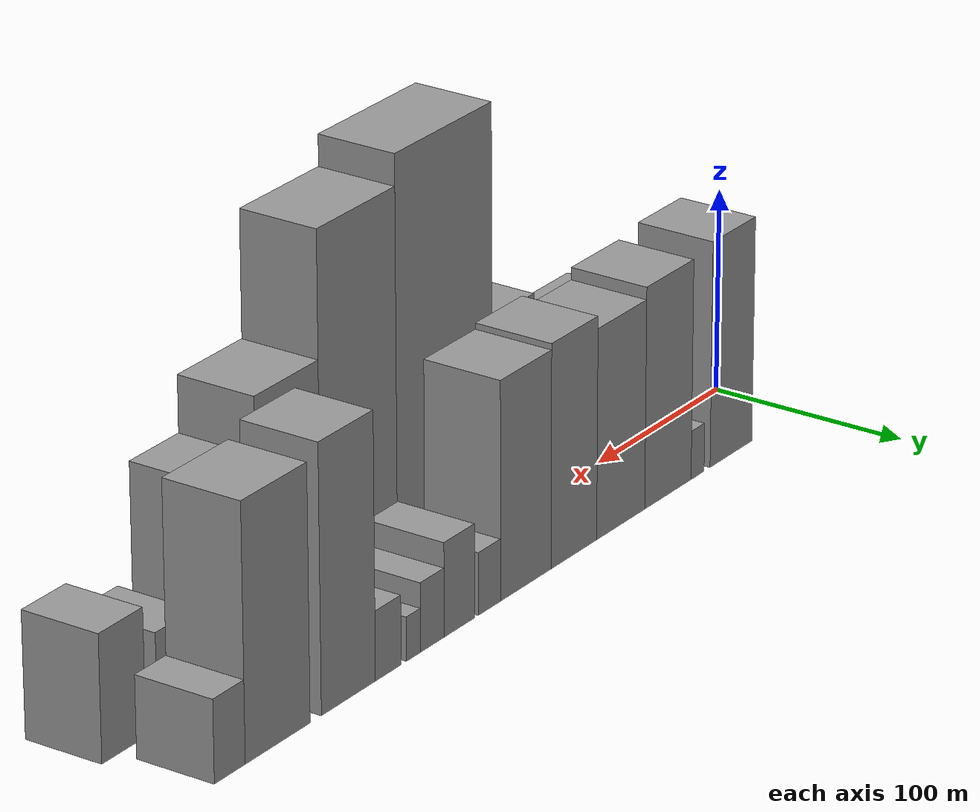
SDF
<sdf version="1.6">
 <world name="default">
  <scene>
   <sky><clouds><speed>12</speed></clouds></sky>
   <ambient>0.4 0.4 0.4 1</ambient>
   <background>0.7 0.7 0.7 1</background>
   <shadows>1</shadows>
  </scene>
  <gravity>0 0 -9.8066</gravity>
  <magnetic_field>6e-06 2.3e-05 -4.2e-05</magnetic_field>
  <physics default="0" name="default_physics" type="ode">
   <ode>
    <solver>
     <type>quick</type>
     <iters>10</iters>
     <sor>1.0</sor>
     <use_dynamic_moi_rescaling>0</use_dynamic_moi_rescaling>
    </solver>
    <constraints>
     <cfm>0</cfm>
     <erp>0.2</erp>
     <contact_max_correcting_vel>100</contact_max_correcting_vel>
     <contact_surface_layer>0.001</contact_surface_layer>
    </constraints>
   </ode>
   <max_step_size>0.004</max_step_size>
   <real_time_factor>1</real_time_factor>
   <real_time_update_rate>250</real_time_update_rate>
  </physics>
  <light name="sun" type="directional">
   <pose>0 0 10 0 0 0</pose>
   <diffuse>0.8 0.8 0.8 1</diffuse>
   <specular>0.2 0.2 0.2 1</specular>
   <attenuation>
    <range>1000</range>
    <constant>0.9</constant>
    <linear>0.01</linear>
    <quadratic>0.001</quadratic>
   </attenuation>
   <direction>-0.5 0.1 -0.9</direction>
  </light>
  <model name="building_1">
   <static>1</static>
   <pose>57.7230 24.5000 0 0.000000 0.000000 1.570796</pose>
   <link name="link">
    <pose>0 0 55.50 0 0 0</pose>
    <collision name="collision"><geometry><box><size>40.0000 35.4460 111.0000</size></box></geometry></collision>
    <visual name="visual">
     <cast_shadows>0</cast_shadows>
     <geometry><box><size>40.0000 35.4460 111.0000</size></box></geometry>
     <material>
      <script>
       <uri>model://grey_wall/materials/scripts</uri>
       <uri>model://grey_wall/materials/textures</uri>
       <name>vrc/grey_wall</name>
      </script>
     </material>
    </visual>
   </link>
  </model>
  <model name="building_2">
   <static>1</static>
   <pose>85.8500 24.5000 0 0.000000 0.000000 1.570796</pose>
   <link name="link">
    <pose>0 0 12.00 0 0 0</pose>
    <collision name="collision"><geometry><box><size>40.0000 10.8080 24.0000</size></box></geometry></collision>
    <visual name="visual">
     <cast_shadows>0</cast_shadows>
     <geometry><box><size>40.0000 10.8080 24.0000</size></box></geometry>
     <material>
      <script>
       <uri>model://grey_wall/materials/scripts</uri>
       <uri>model://grey_wall/materials/textures</uri>
       <name>vrc/grey_wall</name>
      </script>
     </material>
    </visual>
   </link>
  </model>
  <model name="building_3">
   <static>1</static>
   <pose>110.3796 24.5000 0 0.000000 0.000000 1.570796</pose>
   <link name="link">
    <pose>0 0 54.00 0 0 0</pose>
    <collision name="collision"><geometry><box><size>40.0000 38.2512 108.0000</size></box></geometry></collision>
    <visual name="visual">
     <cast_shadows>0</cast_shadows>
     <geometry><box><size>40.0000 38.2512 108.0000</size></box></geometry>
     <material>
      <script>
       <uri>model://grey_wall/materials/scripts</uri>
       <uri>model://grey_wall/materials/textures</uri>
       <name>vrc/grey_wall</name>
      </script>
     </material>
    </visual>
   </link>
  </model>
  <model name="building_4">
   <static>1</static>
   <pose>148.9322 24.5000 0 0.000000 0.000000 1.570796</pose>
   <link name="link">
    <pose>0 0 51.00 0 0 0</pose>
    <collision name="collision"><geometry><box><size>40.0000 38.8541 102.0000</size></box></geometry></collision>
    <visual name="visual">
     <cast_shadows>0</cast_shadows>
     <geometry><box><size>40.0000 38.8541 102.0000</size></box></geometry>
     <material>
      <script>
       <uri>model://grey_wall/materials/scripts</uri>
       <uri>model://grey_wall/materials/textures</uri>
       <name>vrc/grey_wall</name>
      </script>
     </material>
    </visual>
   </link>
  </model>
  <model name="building_5">
   <static>1</static>
   <pose>186.4778 24.5000 0 0.000000 0.000000 1.570796</pose>
   <link name="link">
    <pose>0 0 54.00 0 0 0</pose>
    <collision name="collision"><geometry><box><size>40.0000 36.2371 108.0000</size></box></geometry></collision>
    <visual name="visual">
     <cast_shadows>0</cast_shadows>
     <geometry><box><size>40.0000 36.2371 108.0000</size></box></geometry>
     <material>
      <script>
       <uri>model://grey_wall/materials/scripts</uri>
       <uri>model://grey_wall/materials/textures</uri>
       <name>vrc/grey_wall</name>
      </script>
     </material>
    </visual>
   </link>
  </model>
  <model name="building_6">
   <static>1</static>
   <pose>224.2508 24.5000 0 0.000000 0.000000 1.570796</pose>
   <link name="link">
    <pose>0 0 52.50 0 0 0</pose>
    <collision name="collision"><geometry><box><size>40.0000 39.3089 105.0000</size></box></geometry></collision>
    <visual name="visual">
     <cast_shadows>0</cast_shadows>
     <geometry><box><size>40.0000 39.3089 105.0000</size></box></geometry>
     <material>
      <script>
       <uri>model://grey_wall/materials/scripts</uri>
       <uri>model://grey_wall/materials/textures</uri>
       <name>vrc/grey_wall</name>
      </script>
     </material>
    </visual>
   </link>
  </model>
  <model name="building_7">
   <static>1</static>
   <pose>252.2748 24.5000 0 0.000000 0.000000 1.570796</pose>
   <link name="link">
    <pose>0 0 15.00 0 0 0</pose>
    <collision name="collision"><geometry><box><size>40.0000 16.7392 30.0000</size></box></geometry></collision>
    <visual name="visual">
     <cast_shadows>0</cast_shadows>
     <geometry><box><size>40.0000 16.7392 30.0000</size></box></geometry>
     <material>
      <script>
       <uri>model://grey_wall/materials/scripts</uri>
       <uri>model://grey_wall/materials/textures</uri>
       <name>vrc/grey_wall</name>
      </script>
     </material>
    </visual>
   </link>
  </model>
  <model name="building_8">
   <static>1</static>
   <pose>275.1483 24.5000 0 0.000000 0.000000 1.570796</pose>
   <link name="link">
    <pose>0 0 22.50 0 0 0</pose>
    <collision name="collision"><geometry><box><size>40.0000 23.0078 45.0000</size></box></geometry></collision>
    <visual name="visual">
     <cast_shadows>0</cast_shadows>
     <geometry><box><size>40.0000 23.0078 45.0000</size></box></geometry>
     <material>
      <script>
       <uri>model://grey_wall/materials/scripts</uri>
       <uri>model://grey_wall/materials/textures</uri>
       <name>vrc/grey_wall</name>
      </script>
     </material>
    </visual>
   </link>
  </model>
  <model name="building_9">
   <static>1</static>
   <pose>295.5090 24.5000 0 0.000000 0.000000 1.570796</pose>
   <link name="link">
    <pose>0 0 16.50 0 0 0</pose>
    <collision name="collision"><geometry><box><size>40.0000 17.7137 33.0000</size></box></geometry></collision>
    <visual name="visual">
     <cast_shadows>0</cast_shadows>
     <geometry><box><size>40.0000 17.7137 33.0000</size></box></geometry>
     <material>
      <script>
       <uri>model://grey_wall/materials/scripts</uri>
       <uri>model://grey_wall/materials/textures</uri>
       <name>vrc/grey_wall</name>
      </script>
     </material>
    </visual>
   </link>
  </model>
  <model name="building_10">
   <static>1</static>
   <pose>309.5540 24.5000 0 0.000000 0.000000 1.570796</pose>
   <link name="link">
    <pose>0 0 10.50 0 0 0</pose>
    <collision name="collision"><geometry><box><size>40.0000 10.3763 21.0000</size></box></geometry></collision>
    <visual name="visual">
     <cast_shadows>0</cast_shadows>
     <geometry><box><size>40.0000 10.3763 21.0000</size></box></geometry>
     <material>
      <script>
       <uri>model://grey_wall/materials/scripts</uri>
       <uri>model://grey_wall/materials/textures</uri>
       <name>vrc/grey_wall</name>
      </script>
     </material>
    </visual>
   </link>
  </model>
  <model name="building_11">
   <static>1</static>
   <pose>328.1984 24.5000 0 0.000000 0.000000 1.570796</pose>
   <link name="link">
    <pose>0 0 16.50 0 0 0</pose>
    <collision name="collision"><geometry><box><size>40.0000 18.9124 33.0000</size></box></geometry></collision>
    <visual name="visual">
     <cast_shadows>0</cast_shadows>
     <geometry><box><size>40.0000 18.9124 33.0000</size></box></geometry>
     <material>
      <script>
       <uri>model://grey_wall/materials/scripts</uri>
       <uri>model://grey_wall/materials/textures</uri>
       <name>vrc/grey_wall</name>
      </script>
     </material>
    </visual>
   </link>
  </model>
  <model name="building_12">
   <static>1</static>
   <pose>357.2224 24.5000 0 0.000000 0.000000 1.570796</pose>
   <link name="link">
    <pose>0 0 63.00 0 0 0</pose>
    <collision name="collision"><geometry><box><size>40.0000 39.1356 126.0000</size></box></geometry></collision>
    <visual name="visual">
     <cast_shadows>0</cast_shadows>
     <geometry><box><size>40.0000 39.1356 126.0000</size></box></geometry>
     <material>
      <script>
       <uri>model://grey_wall/materials/scripts</uri>
       <uri>model://grey_wall/materials/textures</uri>
       <name>vrc/grey_wall</name>
      </script>
     </material>
    </visual>
   </link>
  </model>
  <model name="building_13">
   <static>1</static>
   <pose>407.6210 24.5000 0 0.000000 0.000000 1.570796</pose>
   <link name="link">
    <pose>0 0 60.00 0 0 0</pose>
    <collision name="collision"><geometry><box><size>40.0000 45.6616 120.0000</size></box></geometry></collision>
    <visual name="visual">
     <cast_shadows>0</cast_shadows>
     <geometry><box><size>40.0000 45.6616 120.0000</size></box></geometry>
     <material>
      <script>
       <uri>model://grey_wall/materials/scripts</uri>
       <uri>model://grey_wall/materials/textures</uri>
       <name>vrc/grey_wall</name>
      </script>
     </material>
    </visual>
   </link>
  </model>
  <model name="building_14">
   <static>1</static>
   <pose>441.1496 24.5000 0 0.000000 0.000000 1.570796</pose>
   <link name="link">
    <pose>0 0 19.50 0 0 0</pose>
    <collision name="collision"><geometry><box><size>40.0000 21.3957 39.0000</size></box></geometry></collision>
    <visual name="visual">
     <cast_shadows>0</cast_shadows>
     <geometry><box><size>40.0000 21.3957 39.0000</size></box></geometry>
     <material>
      <script>
       <uri>model://grey_wall/materials/scripts</uri>
       <uri>model://grey_wall/materials/textures</uri>
       <name>vrc/grey_wall</name>
      </script>
     </material>
    </visual>
   </link>
  </model>
  <model name="building_15">
   <static>1</static>
   <pose>45.0399 -24.5000 0 0.000000 0.000000 1.570796</pose>
   <link name="link">
    <pose>0 0 10.50 0 0 0</pose>
    <collision name="collision"><geometry><box><size>40.0000 10.0799 21.0000</size></box></geometry></collision>
    <visual name="visual">
     <cast_shadows>0</cast_shadows>
     <geometry><box><size>40.0000 10.0799 21.0000</size></box></geometry>
     <material>
      <script>
       <uri>model://grey_wall/materials/scripts</uri>
       <uri>model://grey_wall/materials/textures</uri>
       <name>vrc/grey_wall</name>
      </script>
     </material>
    </visual>
   </link>
  </model>
  <model name="building_16">
   <static>1</static>
   <pose>77.2134 -24.5000 0 0.000000 0.000000 1.570796</pose>
   <link name="link">
    <pose>0 0 34.50 0 0 0</pose>
    <collision name="collision"><geometry><box><size>40.0000 36.2671 69.0000</size></box></geometry></collision>
    <visual name="visual">
     <cast_shadows>0</cast_shadows>
     <geometry><box><size>40.0000 36.2671 69.0000</size></box></geometry>
     <material>
      <script>
       <uri>model://grey_wall/materials/scripts</uri>
       <uri>model://grey_wall/materials/textures</uri>
       <name>vrc/grey_wall</name>
      </script>
     </material>
    </visual>
   </link>
  </model>
  <model name="building_17">
   <static>1</static>
   <pose>121.1402 -24.5000 0 0.000000 0.000000 1.570796</pose>
   <link name="link">
    <pose>0 0 28.50 0 0 0</pose>
    <collision name="collision"><geometry><box><size>40.0000 33.5865 57.0000</size></box></geometry></collision>
    <visual name="visual">
     <cast_shadows>0</cast_shadows>
     <geometry><box><size>40.0000 33.5865 57.0000</size></box></geometry>
     <material>
      <script>
       <uri>model://grey_wall/materials/scripts</uri>
       <uri>model://grey_wall/materials/textures</uri>
       <name>vrc/grey_wall</name>
      </script>
     </material>
    </visual>
   </link>
  </model>
  <model name="building_18">
   <static>1</static>
   <pose>162.4918 -24.5000 0 0.000000 0.000000 1.570796</pose>
   <link name="link">
    <pose>0 0 49.50 0 0 0</pose>
    <collision name="collision"><geometry><box><size>40.0000 33.1167 99.0000</size></box></geometry></collision>
    <visual name="visual">
     <cast_shadows>0</cast_shadows>
     <geometry><box><size>40.0000 33.1167 99.0000</size></box></geometry>
     <material>
      <script>
       <uri>model://grey_wall/materials/scripts</uri>
       <uri>model://grey_wall/materials/textures</uri>
       <name>vrc/grey_wall</name>
      </script>
     </material>
    </visual>
   </link>
  </model>
  <model name="building_19">
   <static>1</static>
   <pose>215.4369 -24.5000 0 0.000000 0.000000 1.570796</pose>
   <link name="link">
    <pose>0 0 100.50 0 0 0</pose>
    <collision name="collision"><geometry><box><size>40.0000 72.7735 201.0000</size></box></geometry></collision>
    <visual name="visual">
     <cast_shadows>0</cast_shadows>
     <geometry><box><size>40.0000 72.7735 201.0000</size></box></geometry>
     <material>
      <script>
       <uri>model://grey_wall/materials/scripts</uri>
       <uri>model://grey_wall/materials/textures</uri>
       <name>vrc/grey_wall</name>
      </script>
     </material>
    </visual>
   </link>
  </model>
  <model name="building_20">
   <static>1</static>
   <pose>280.3300 -24.5000 0 0.000000 0.000000 1.570796</pose>
   <link name="link">
    <pose>0 0 93.00 0 0 0</pose>
    <collision name="collision"><geometry><box><size>40.0000 57.0126 186.0000</size></box></geometry></collision>
    <visual name="visual">
     <cast_shadows>0</cast_shadows>
     <geometry><box><size>40.0000 57.0126 186.0000</size></box></geometry>
     <material>
      <script>
       <uri>model://grey_wall/materials/scripts</uri>
       <uri>model://grey_wall/materials/textures</uri>
       <name>vrc/grey_wall</name>
      </script>
     </material>
    </visual>
   </link>
  </model>
  <model name="building_21">
   <static>1</static>
   <pose>331.6544 -24.5000 0 0.000000 0.000000 1.570796</pose>
   <link name="link">
    <pose>0 0 63.00 0 0 0</pose>
    <collision name="collision"><geometry><box><size>40.0000 45.6363 126.0000</size></box></geometry></collision>
    <visual name="visual">
     <cast_shadows>0</cast_shadows>
     <geometry><box><size>40.0000 45.6363 126.0000</size></box></geometry>
     <material>
      <script>
       <uri>model://grey_wall/materials/scripts</uri>
       <uri>model://grey_wall/materials/textures</uri>
       <name>vrc/grey_wall</name>
      </script>
     </material>
    </visual>
   </link>
  </model>
  <model name="building_22">
   <static>1</static>
   <pose>371.6472 -24.5000 0 0.000000 0.000000 1.570796</pose>
   <link name="link">
    <pose>0 0 49.50 0 0 0</pose>
    <collision name="collision"><geometry><box><size>40.0000 34.3494 99.0000</size></box></geometry></collision>
    <visual name="visual">
     <cast_shadows>0</cast_shadows>
     <geometry><box><size>40.0000 34.3494 99.0000</size></box></geometry>
     <material>
      <script>
       <uri>model://grey_wall/materials/scripts</uri>
       <uri>model://grey_wall/materials/textures</uri>
       <name>vrc/grey_wall</name>
      </script>
     </material>
    </visual>
   </link>
  </model>
  <model name="building_23">
   <static>1</static>
   <pose>412.2555 -24.5000 0 0.000000 0.000000 1.570796</pose>
   <link name="link">
    <pose>0 0 22.50 0 0 0</pose>
    <collision name="collision"><geometry><box><size>40.0000 26.8672 45.0000</size></box></geometry></collision>
    <visual name="visual">
     <cast_shadows>0</cast_shadows>
     <geometry><box><size>40.0000 26.8672 45.0000</size></box></geometry>
     <material>
      <script>
       <uri>model://grey_wall/materials/scripts</uri>
       <uri>model://grey_wall/materials/textures</uri>
       <name>vrc/grey_wall</name>
      </script>
     </material>
    </visual>
   </link>
  </model>
  <model name="building_24">
   <static>1</static>
   <pose>448.6896 -24.5000 0 0.000000 0.000000 1.570796</pose>
   <link name="link">
    <pose>0 0 30.00 0 0 0</pose>
    <collision name="collision"><geometry><box><size>40.0000 30.0010 60.0000</size></box></geometry></collision>
    <visual name="visual">
     <cast_shadows>0</cast_shadows>
     <geometry><box><size>40.0000 30.0010 60.0000</size></box></geometry>
     <material>
      <script>
       <uri>model://grey_wall/materials/scripts</uri>
       <uri>model://grey_wall/materials/textures</uri>
       <name>vrc/grey_wall</name>
      </script>
     </material>
    </visual>
   </link>
  </model>
 </world>
</sdf>
